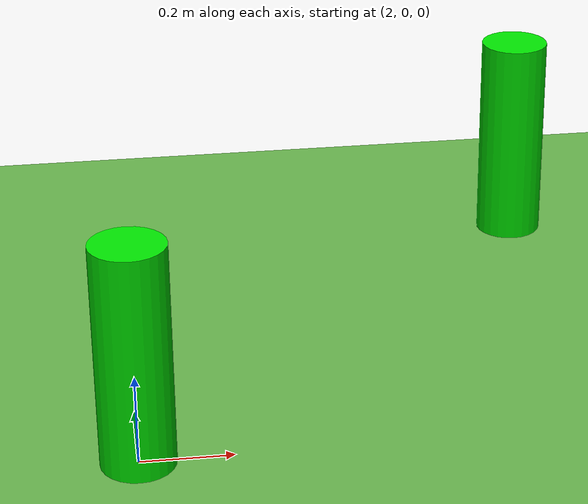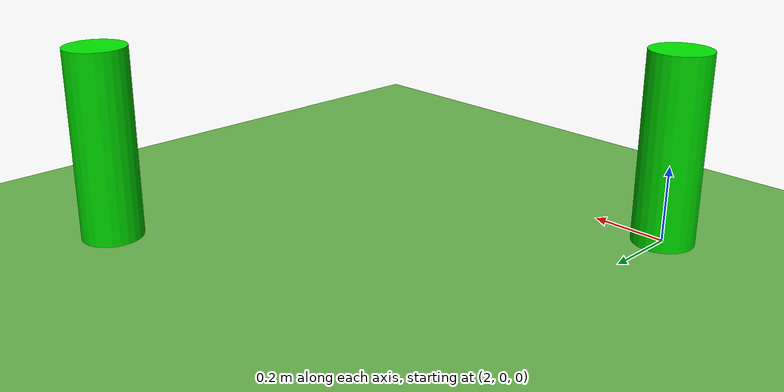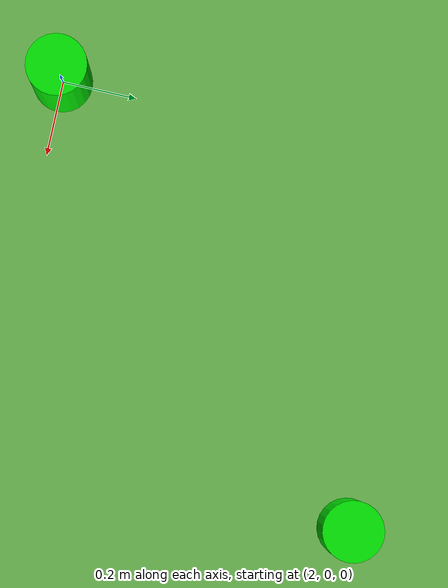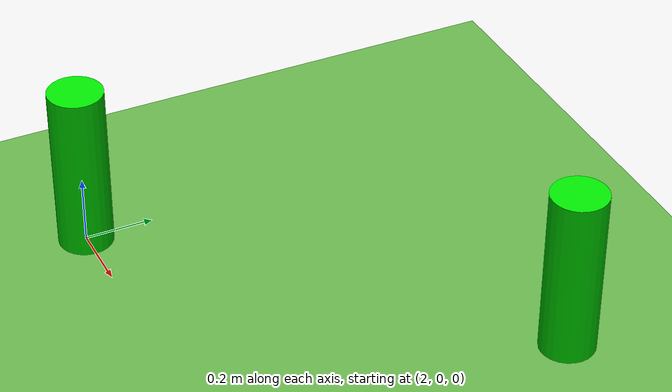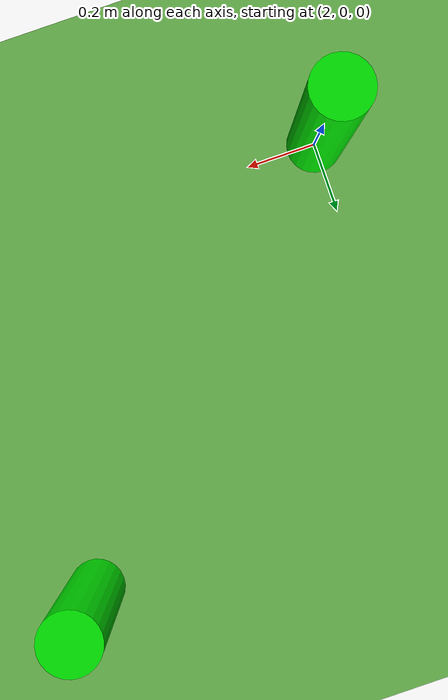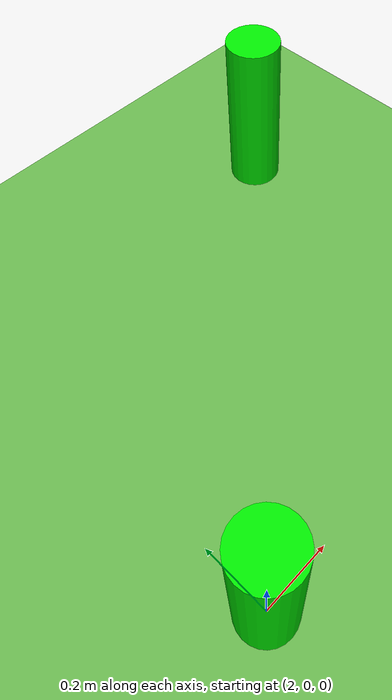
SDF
<?xml version="1.0" ?>
<sdf version="1.6">
  <world name="farm">

    <light name="sun" type="directional">
      <cast_shadows>true</cast_shadows>
      <pose>0 0 10 0 0 0</pose>
      <diffuse>1 1 1 1</diffuse>
      <specular>0.1 0.1 0.1 1</specular>
      <direction>-0.5 0.1 -0.9</direction>
    </light>

    <model name="ground_plane">
      <static>true</static>
      <link name="link">
        <collision name="collision">
          <geometry>
            <plane>
              <normal>0 0 1</normal>
              <size>100 100</size>
            </plane>
          </geometry>
        </collision>
        <visual name="visual">
          <geometry>
            <plane>
              <normal>0 0 1</normal>
              <size>100 100</size>
            </plane>
          </geometry>
          <material>
            <ambient>0.4 0.7 0.3 1</ambient>
            <diffuse>0.4 0.7 0.3 1</diffuse>
          </material>
        </visual>
      </link>
    </model>

    <model name="weed_1">
      <static>true</static>
      <pose>2 0 0.25 0 0 0</pose>
      <link name="link">
        <visual name="visual">
          <geometry>
            <cylinder>
              <radius>0.08</radius>
              <length>0.5</length>
            </cylinder>
          </geometry>
          <material>
            <ambient>0 0.9 0 1</ambient>
            <diffuse>0 0.9 0 1</diffuse>
          </material>
        </visual>
        <collision name="collision">
          <geometry>
            <cylinder>
              <radius>0.08</radius>
              <length>0.5</length>
            </cylinder>
          </geometry>
        </collision>
      </link>
    </model>

    <model name="weed_2">
      <static>true</static>
      <pose>3 1 0.25 0 0 0</pose>
      <link name="link">
        <visual name="visual">
          <geometry>
            <cylinder>
              <radius>0.08</radius>
              <length>0.5</length>
            </cylinder>
          </geometry>
          <material>
            <ambient>0 0.9 0 1</ambient>
            <diffuse>0 0.9 0 1</diffuse>
          </material>
        </visual>
        <collision name="collision">
          <geometry>
            <cylinder>
              <radius>0.08</radius>
              <length>0.5</length>
            </cylinder>
          </geometry>
        </collision>
      </link>
    </model>

  </world>
</sdf>
